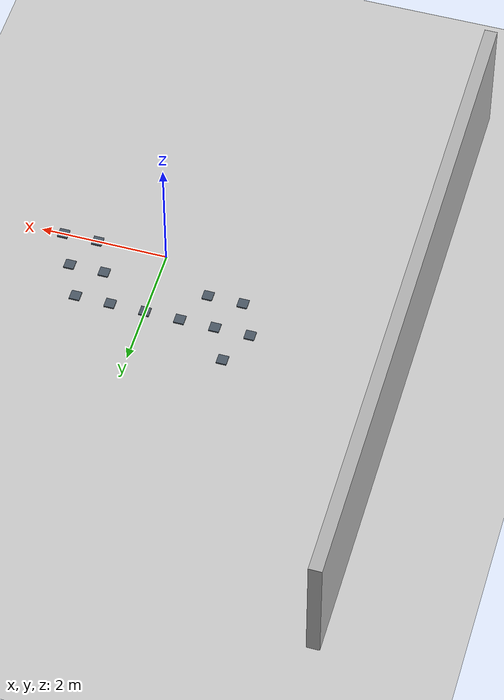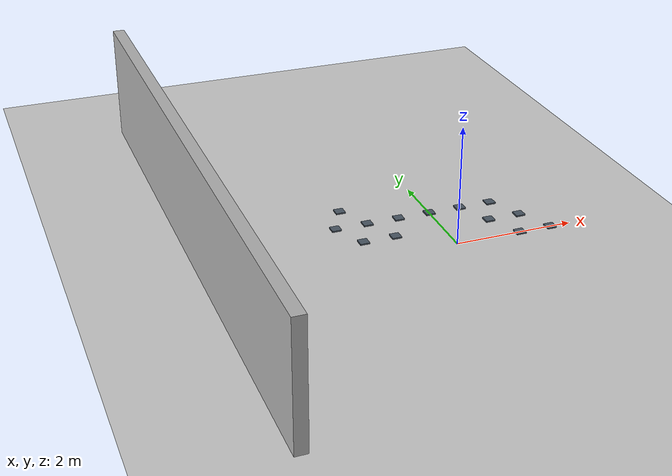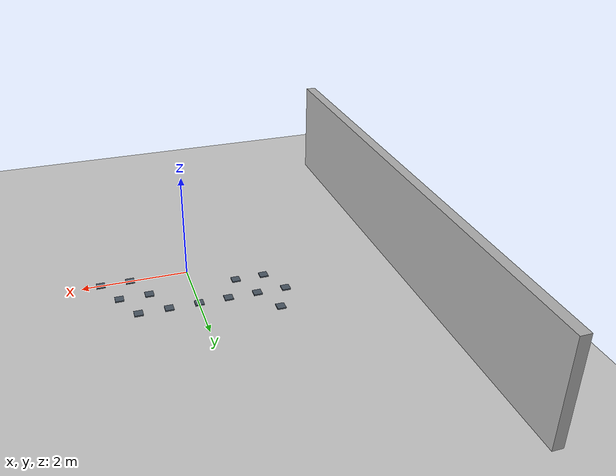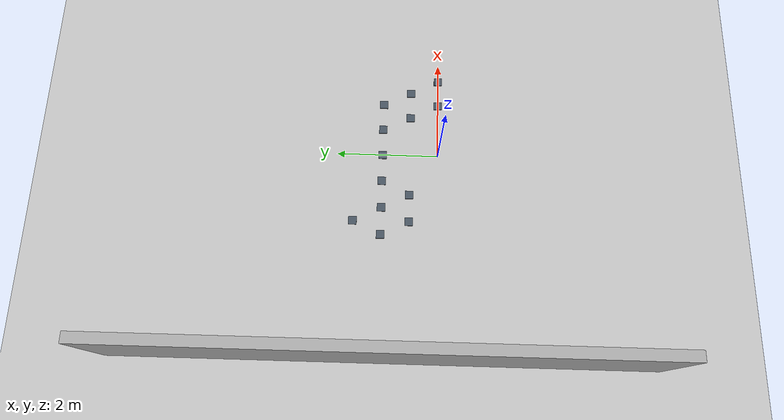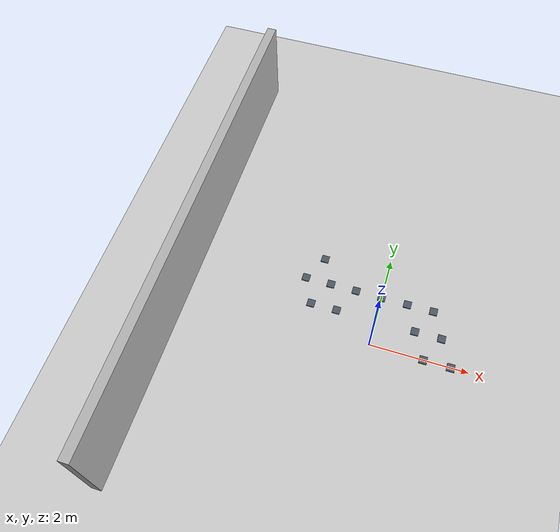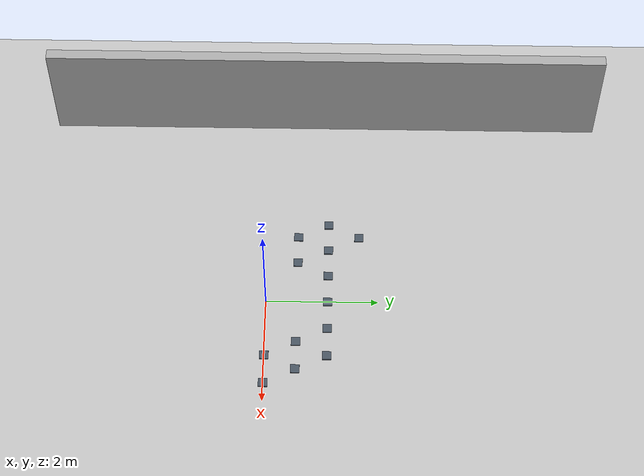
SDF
<sdf version="1.9">
 <world name="empty_ground">
  <model name="ground_plane">
   <static>true</static>
   <link name="link">
    <collision name="collision">
     <geometry><plane><normal>0 0 1</normal><size>100 100</size></plane></geometry>
     <surface>
      <friction>
       <ode><mu>1.5</mu><mu2>1.5</mu2></ode>
       <torsional><coefficient>0.0</coefficient></torsional>
      </friction>
     </surface>
    </collision>
    <visual name="visual">
     <geometry><plane><normal>0 0 1</normal><size>100 100</size></plane></geometry>
     <material><ambient>0.8 0.8 0.8 1</ambient><diffuse>0.8 0.8 0.8 1</diffuse></material>
    </visual>
   </link>
  </model>
  <model name="bump_6">
   <static>true</static>
   <pose>-1.380 0.550 0.012 0 0 0</pose>
   <link name="link">
    <collision name="collision">
     <geometry><box><size>0.16 0.16 0.024</size></box></geometry>
     <surface>
      <friction>
       <ode><mu>1.5</mu><mu2>1.5</mu2></ode>
       <torsional><coefficient>0.0</coefficient></torsional>
      </friction>
     </surface>
    </collision>
    <visual name="visual">
     <geometry><box><size>0.16 0.16 0.024</size></box></geometry>
     <material><ambient>0.25 0.3 0.35 1</ambient><diffuse>0.30 0.35 0.4 1</diffuse></material>
    </visual>
   </link>
  </model>
  <model name="bump_7">
   <static>true</static>
   <pose>-1.650 1.100 0.012 0 0 0</pose>
   <link name="link">
    <collision name="collision">
     <geometry><box><size>0.16 0.16 0.024</size></box></geometry>
     <surface>
      <friction>
       <ode><mu>1.5</mu><mu2>1.5</mu2></ode>
       <torsional><coefficient>0.0</coefficient></torsional>
      </friction>
     </surface>
    </collision>
    <visual name="visual">
     <geometry><box><size>0.16 0.16 0.024</size></box></geometry>
     <material><ambient>0.25 0.3 0.35 1</ambient><diffuse>0.30 0.35 0.4 1</diffuse></material>
    </visual>
   </link>
  </model>
  <model name="bump_8">
   <static>true</static>
   <pose>-1.380 1.650 0.012 0 0 0</pose>
   <link name="link">
    <collision name="collision">
     <geometry><box><size>0.16 0.16 0.024</size></box></geometry>
     <surface>
      <friction>
       <ode><mu>1.5</mu><mu2>1.5</mu2></ode>
       <torsional><coefficient>0.0</coefficient></torsional>
      </friction>
     </surface>
    </collision>
    <visual name="visual">
     <geometry><box><size>0.16 0.16 0.024</size></box></geometry>
     <material><ambient>0.25 0.3 0.35 1</ambient><diffuse>0.30 0.35 0.4 1</diffuse></material>
    </visual>
   </link>
  </model>
  <model name="bump_15">
   <static>true</static>
   <pose>-0.830 0.550 0.012 0 0 0</pose>
   <link name="link">
    <collision name="collision">
     <geometry><box><size>0.16 0.16 0.024</size></box></geometry>
     <surface>
      <friction>
       <ode><mu>1.5</mu><mu2>1.5</mu2></ode>
       <torsional><coefficient>0.0</coefficient></torsional>
      </friction>
     </surface>
    </collision>
    <visual name="visual">
     <geometry><box><size>0.16 0.16 0.024</size></box></geometry>
     <material><ambient>0.25 0.3 0.35 1</ambient><diffuse>0.30 0.35 0.4 1</diffuse></material>
    </visual>
   </link>
  </model>
  <model name="bump_16">
   <static>true</static>
   <pose>-1.100 1.100 0.012 0 0 0</pose>
   <link name="link">
    <collision name="collision">
     <geometry><box><size>0.16 0.16 0.024</size></box></geometry>
     <surface>
      <friction>
       <ode><mu>1.5</mu><mu2>1.5</mu2></ode>
       <torsional><coefficient>0.0</coefficient></torsional>
      </friction>
     </surface>
    </collision>
    <visual name="visual">
     <geometry><box><size>0.16 0.16 0.024</size></box></geometry>
     <material><ambient>0.25 0.3 0.35 1</ambient><diffuse>0.30 0.35 0.4 1</diffuse></material>
    </visual>
   </link>
  </model>
  <model name="bump_22">
   <static>true</static>
   <pose>-0.550 1.100 0.012 0 0 0</pose>
   <link name="link">
    <collision name="collision">
     <geometry><box><size>0.16 0.16 0.024</size></box></geometry>
     <surface>
      <friction>
       <ode><mu>1.5</mu><mu2>1.5</mu2></ode>
       <torsional><coefficient>0.0</coefficient></torsional>
      </friction>
     </surface>
    </collision>
    <visual name="visual">
     <geometry><box><size>0.16 0.16 0.024</size></box></geometry>
     <material><ambient>0.25 0.3 0.35 1</ambient><diffuse>0.30 0.35 0.4 1</diffuse></material>
    </visual>
   </link>
  </model>
  <model name="bump_28">
   <static>true</static>
   <pose>0.000 1.100 0.012 0 0 0</pose>
   <link name="link">
    <collision name="collision">
     <geometry><box><size>0.16 0.16 0.024</size></box></geometry>
     <surface>
      <friction>
       <ode><mu>1.5</mu><mu2>1.5</mu2></ode>
       <torsional><coefficient>0.0</coefficient></torsional>
      </friction>
     </surface>
    </collision>
    <visual name="visual">
     <geometry><box><size>0.16 0.16 0.024</size></box></geometry>
     <material><ambient>0.25 0.3 0.35 1</ambient><diffuse>0.30 0.35 0.4 1</diffuse></material>
    </visual>
   </link>
  </model>
  <model name="bump_35">
   <static>true</static>
   <pose>0.820 0.550 0.012 0 0 0</pose>
   <link name="link">
    <collision name="collision">
     <geometry><box><size>0.16 0.16 0.024</size></box></geometry>
     <surface>
      <friction>
       <ode><mu>1.5</mu><mu2>1.5</mu2></ode>
       <torsional><coefficient>0.0</coefficient></torsional>
      </friction>
     </surface>
    </collision>
    <visual name="visual">
     <geometry><box><size>0.16 0.16 0.024</size></box></geometry>
     <material><ambient>0.25 0.3 0.35 1</ambient><diffuse>0.30 0.35 0.4 1</diffuse></material>
    </visual>
   </link>
  </model>
  <model name="bump_36">
   <static>true</static>
   <pose>0.550 1.100 0.012 0 0 0</pose>
   <link name="link">
    <collision name="collision">
     <geometry><box><size>0.16 0.16 0.024</size></box></geometry>
     <surface>
      <friction>
       <ode><mu>1.5</mu><mu2>1.5</mu2></ode>
       <torsional><coefficient>0.0</coefficient></torsional>
      </friction>
     </surface>
    </collision>
    <visual name="visual">
     <geometry><box><size>0.16 0.16 0.024</size></box></geometry>
     <material><ambient>0.25 0.3 0.35 1</ambient><diffuse>0.30 0.35 0.4 1</diffuse></material>
    </visual>
   </link>
  </model>
  <model name="bump_43">
   <static>true</static>
   <pose>1.100 0.000 0.012 0 0 0</pose>
   <link name="link">
    <collision name="collision">
     <geometry><box><size>0.16 0.16 0.024</size></box></geometry>
     <surface>
      <friction>
       <ode><mu>1.5</mu><mu2>1.5</mu2></ode>
       <torsional><coefficient>0.0</coefficient></torsional>
      </friction>
     </surface>
    </collision>
    <visual name="visual">
     <geometry><box><size>0.16 0.16 0.024</size></box></geometry>
     <material><ambient>0.25 0.3 0.35 1</ambient><diffuse>0.30 0.35 0.4 1</diffuse></material>
    </visual>
   </link>
  </model>
  <model name="bump_44">
   <static>true</static>
   <pose>1.370 0.550 0.012 0 0 0</pose>
   <link name="link">
    <collision name="collision">
     <geometry><box><size>0.16 0.16 0.024</size></box></geometry>
     <surface>
      <friction>
       <ode><mu>1.5</mu><mu2>1.5</mu2></ode>
       <torsional><coefficient>0.0</coefficient></torsional>
      </friction>
     </surface>
    </collision>
    <visual name="visual">
     <geometry><box><size>0.16 0.16 0.024</size></box></geometry>
     <material><ambient>0.25 0.3 0.35 1</ambient><diffuse>0.30 0.35 0.4 1</diffuse></material>
    </visual>
   </link>
  </model>
  <model name="bump_45">
   <static>true</static>
   <pose>1.100 1.100 0.012 0 0 0</pose>
   <link name="link">
    <collision name="collision">
     <geometry><box><size>0.16 0.16 0.024</size></box></geometry>
     <surface>
      <friction>
       <ode><mu>1.5</mu><mu2>1.5</mu2></ode>
       <torsional><coefficient>0.0</coefficient></torsional>
      </friction>
     </surface>
    </collision>
    <visual name="visual">
     <geometry><box><size>0.16 0.16 0.024</size></box></geometry>
     <material><ambient>0.25 0.3 0.35 1</ambient><diffuse>0.30 0.35 0.4 1</diffuse></material>
    </visual>
   </link>
  </model>
  <model name="bump_52">
   <static>true</static>
   <pose>1.650 0.000 0.012 0 0 0</pose>
   <link name="link">
    <collision name="collision">
     <geometry><box><size>0.16 0.16 0.024</size></box></geometry>
     <surface>
      <friction>
       <ode><mu>1.5</mu><mu2>1.5</mu2></ode>
       <torsional><coefficient>0.0</coefficient></torsional>
      </friction>
     </surface>
    </collision>
    <visual name="visual">
     <geometry><box><size>0.16 0.16 0.024</size></box></geometry>
     <material><ambient>0.25 0.3 0.35 1</ambient><diffuse>0.30 0.35 0.4 1</diffuse></material>
    </visual>
   </link>
  </model>
  <model name="wall_west">
   <static>true</static>
   <pose>-4.000 1.000 1.000 0 0 0</pose>
   <link name="link">
    <collision name="collision"><geometry><box><size>0.2 10.2 2.0</size></box></geometry></collision>
    <visual name="visual">
     <geometry><box><size>0.2 10.2 2.0</size></box></geometry>
     <material><ambient>0.6 0.6 0.6 1</ambient><diffuse>0.7 0.7 0.7 1</diffuse></material>
    </visual>
   </link>
  </model>
 </world>
</sdf>
